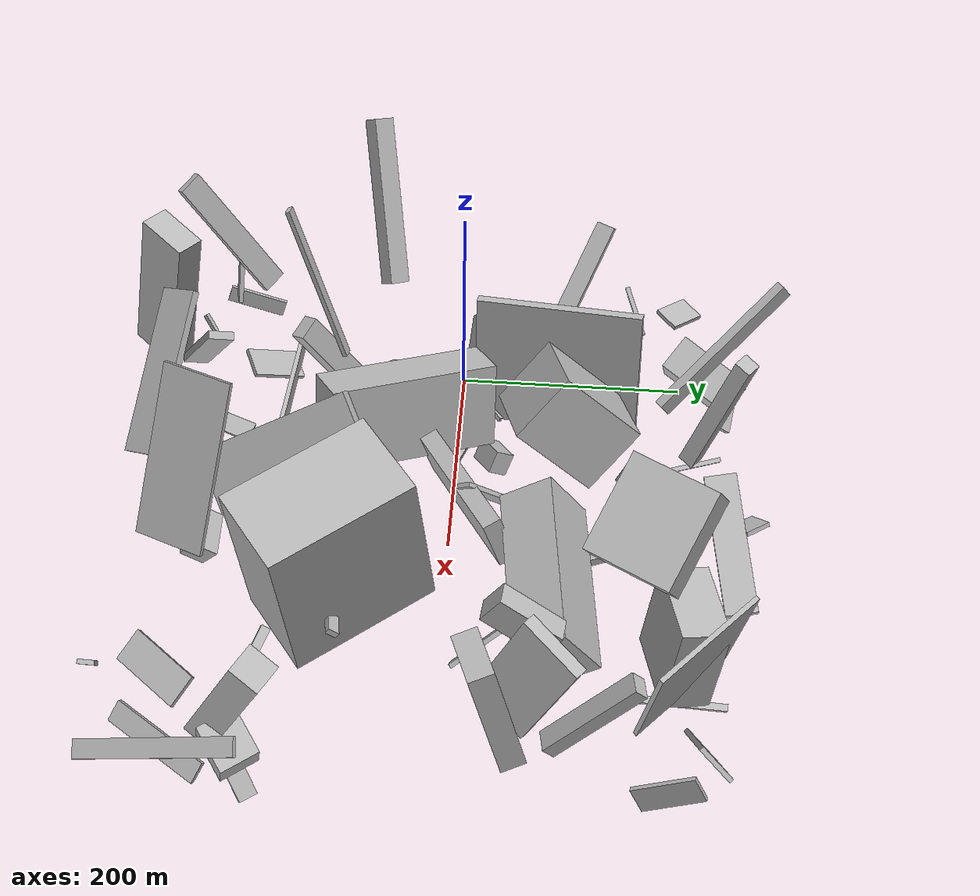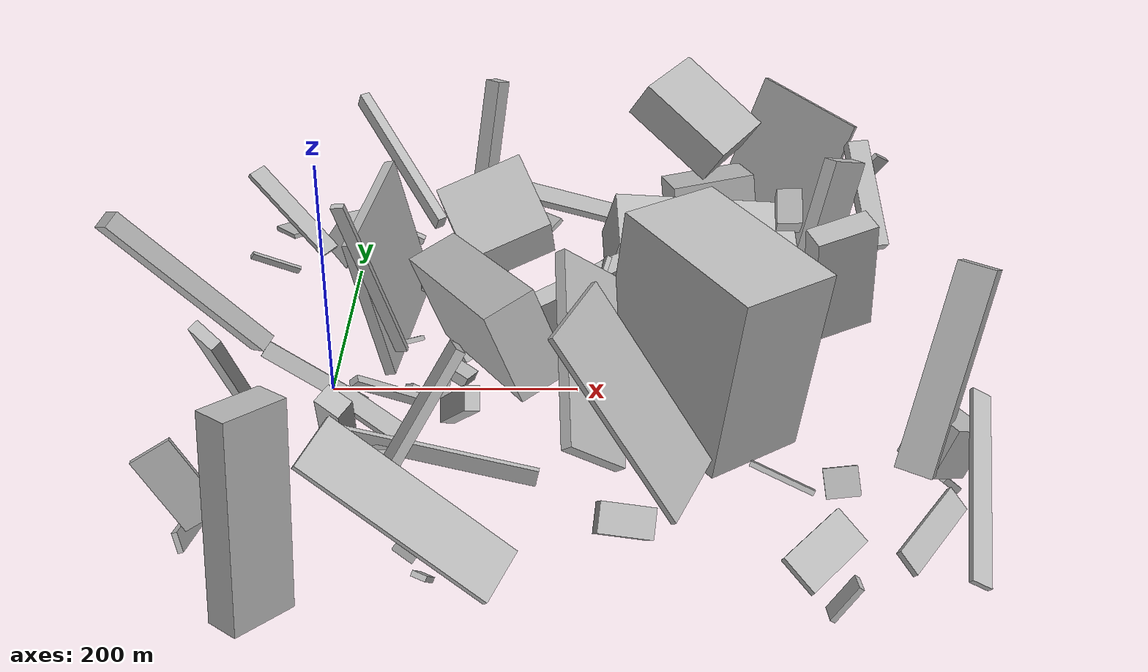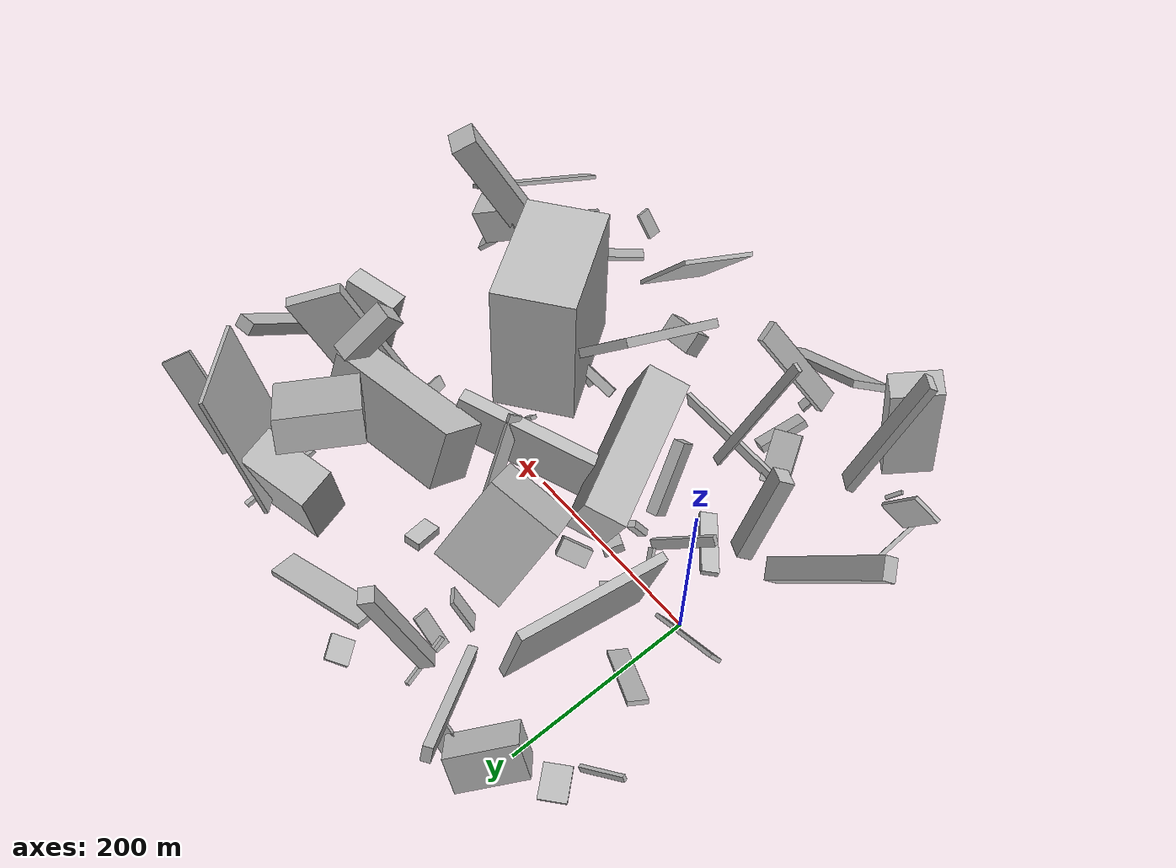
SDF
<sdf version="1.6">
 <world name="default">
  <scene>
   <sky><clouds><speed>12</speed></clouds></sky>
   <ambient>0.4 0.4 0.4 1</ambient>
   <background>0.7 0.7 0.7 1</background>
   <shadows>1</shadows>
  </scene>
  <gravity>0 0 -9.8066</gravity>
  <magnetic_field>6e-06 2.3e-05 -4.2e-05</magnetic_field>
  <physics default="0" name="default_physics" type="ode">
   <ode>
    <solver>
     <type>quick</type>
     <iters>10</iters>
     <sor>1.0</sor>
     <use_dynamic_moi_rescaling>0</use_dynamic_moi_rescaling>
    </solver>
    <constraints>
     <cfm>0</cfm>
     <erp>0.2</erp>
     <contact_max_correcting_vel>100</contact_max_correcting_vel>
     <contact_surface_layer>0.001</contact_surface_layer>
    </constraints>
   </ode>
   <max_step_size>0.004</max_step_size>
   <real_time_factor>1</real_time_factor>
   <real_time_update_rate>250</real_time_update_rate>
  </physics>
  <light name="sun" type="directional">
   <pose>0 0 10 0 0 0</pose>
   <diffuse>0.8 0.8 0.8 1</diffuse>
   <specular>0.2 0.2 0.2 1</specular>
   <attenuation>
    <range>1000</range>
    <constant>0.9</constant>
    <linear>0.01</linear>
    <quadratic>0.001</quadratic>
   </attenuation>
   <direction>-0.5 0.1 -0.9</direction>
  </light>
  <model name="building_1">
   <static>0</static>
   <pose>-31.63262482808633 -238.3386272602602 14.952710230548476 0.8005664860490997 -0.28923439661563144 -0.4902161368618541</pose>
   <link name="link">
    <gravity>0</gravity>
    <pose>0 0 9.0 0 0 0</pose>
    <collision name="collision"><geometry><box><size>4 4 18</size></box></geometry></collision>
    <visual name="visual">
     <cast_shadows>0</cast_shadows>
     <geometry><box><size>4 4 18</size></box></geometry>
     <material>
      <script>
       <uri>model://HANNAS_wall/materials/scripts</uri>
       <uri>model://HANNAS_wall/materials/textures</uri>
       <name>vrc/HANNAS_wall</name>
      </script>
     </material>
    </visual>
   </link>
  </model>
  <model name="building_2">
   <static>0</static>
   <pose>207.26938177321438 -200.3059662888481 75.61046271734673 0.815676334917113 -0.6653864039753742 -2.582316708718397</pose>
   <link name="link">
    <gravity>0</gravity>
    <pose>0 0 75.0 0 0 0</pose>
    <collision name="collision"><geometry><box><size>57 9 150</size></box></geometry></collision>
    <visual name="visual">
     <cast_shadows>0</cast_shadows>
     <geometry><box><size>57 9 150</size></box></geometry>
     <material>
      <script>
       <uri>model://HANNAS_wall/materials/scripts</uri>
       <uri>model://HANNAS_wall/materials/textures</uri>
       <name>vrc/HANNAS_wall</name>
      </script>
     </material>
    </visual>
   </link>
  </model>
  <model name="building_3">
   <static>0</static>
   <pose>40.910126400132576 241.63226380116038 22.038314708658156 2.5645582753945058 -0.7170101781710025 -1.3286254477067514</pose>
   <link name="link">
    <gravity>0</gravity>
    <pose>0 0 2.0 0 0 0</pose>
    <collision name="collision"><geometry><box><size>21 36 4</size></box></geometry></collision>
    <visual name="visual">
     <cast_shadows>0</cast_shadows>
     <geometry><box><size>21 36 4</size></box></geometry>
     <material>
      <script>
       <uri>model://HANNAS_wall/materials/scripts</uri>
       <uri>model://HANNAS_wall/materials/textures</uri>
       <name>vrc/HANNAS_wall</name>
      </script>
     </material>
    </visual>
   </link>
  </model>
  <model name="building_4">
   <static>0</static>
   <pose>145.83034900432736 78.59534806970112 82.56105502202897 0.45540337470626746 -0.7359162643937962 -1.6263342601523199</pose>
   <link name="link">
    <gravity>0</gravity>
    <pose>0 0 32.5 0 0 0</pose>
    <collision name="collision"><geometry><box><size>86 74 65</size></box></geometry></collision>
    <visual name="visual">
     <cast_shadows>0</cast_shadows>
     <geometry><box><size>86 74 65</size></box></geometry>
     <material>
      <script>
       <uri>model://HANNAS_wall/materials/scripts</uri>
       <uri>model://HANNAS_wall/materials/textures</uri>
       <name>vrc/HANNAS_wall</name>
      </script>
     </material>
    </visual>
   </link>
  </model>
  <model name="building_5">
   <static>0</static>
   <pose>385.5985176988212 207.1859443502275 95.5600087022986 0.5871090403565852 -1.240195219610773 0.2166317580293296</pose>
   <link name="link">
    <gravity>0</gravity>
    <pose>0 0 2.0 0 0 0</pose>
    <collision name="collision"><geometry><box><size>150 101 4</size></box></geometry></collision>
    <visual name="visual">
     <cast_shadows>0</cast_shadows>
     <geometry><box><size>150 101 4</size></box></geometry>
     <material>
      <script>
       <uri>model://HANNAS_wall/materials/scripts</uri>
       <uri>model://HANNAS_wall/materials/textures</uri>
       <name>vrc/HANNAS_wall</name>
      </script>
     </material>
    </visual>
   </link>
  </model>
  <model name="building_6">
   <static>0</static>
   <pose>328.5568676908342 -64.25157886907321 109.61574034972932 1.3806020329422009 -1.4433274648323513 -0.7580132744841058</pose>
   <link name="link">
    <gravity>0</gravity>
    <pose>0 0 41.0 0 0 0</pose>
    <collision name="collision"><geometry><box><size>150 132 82</size></box></geometry></collision>
    <visual name="visual">
     <cast_shadows>0</cast_shadows>
     <geometry><box><size>150 132 82</size></box></geometry>
     <material>
      <script>
       <uri>model://HANNAS_wall/materials/scripts</uri>
       <uri>model://HANNAS_wall/materials/textures</uri>
       <name>vrc/HANNAS_wall</name>
      </script>
     </material>
    </visual>
   </link>
  </model>
  <model name="building_7">
   <static>0</static>
   <pose>168.74288685980832 -161.76539789103853 31.724587846478205 1.3841098848227769 0.031790680781820985 -1.6798402488281088</pose>
   <link name="link">
    <gravity>0</gravity>
    <pose>0 0 75.0 0 0 0</pose>
    <collision name="collision"><geometry><box><size>4 14 150</size></box></geometry></collision>
    <visual name="visual">
     <cast_shadows>0</cast_shadows>
     <geometry><box><size>4 14 150</size></box></geometry>
     <material>
      <script>
       <uri>model://HANNAS_wall/materials/scripts</uri>
       <uri>model://HANNAS_wall/materials/textures</uri>
       <name>vrc/HANNAS_wall</name>
      </script>
     </material>
    </visual>
   </link>
  </model>
  <model name="building_8">
   <static>0</static>
   <pose>271.4414879832556 -227.74499686253947 70.03522222170182 0.5797188081933818 0.10490805319413471 -2.0147848377842594</pose>
   <link name="link">
    <gravity>0</gravity>
    <pose>0 0 75.0 0 0 0</pose>
    <collision name="collision"><geometry><box><size>66 4 150</size></box></geometry></collision>
    <visual name="visual">
     <cast_shadows>0</cast_shadows>
     <geometry><box><size>66 4 150</size></box></geometry>
     <material>
      <script>
       <uri>model://HANNAS_wall/materials/scripts</uri>
       <uri>model://HANNAS_wall/materials/textures</uri>
       <name>vrc/HANNAS_wall</name>
      </script>
     </material>
    </visual>
   </link>
  </model>
  <model name="building_9">
   <static>0</static>
   <pose>78.7811429225911 -208.3163353965587 21.626139839603216 2.664819100229129 -0.9861743879555035 0.18986695504711046</pose>
   <link name="link">
    <gravity>0</gravity>
    <pose>0 0 8.5 0 0 0</pose>
    <collision name="collision"><geometry><box><size>8 51 17</size></box></geometry></collision>
    <visual name="visual">
     <cast_shadows>0</cast_shadows>
     <geometry><box><size>8 51 17</size></box></geometry>
     <material>
      <script>
       <uri>model://HANNAS_wall/materials/scripts</uri>
       <uri>model://HANNAS_wall/materials/textures</uri>
       <name>vrc/HANNAS_wall</name>
      </script>
     </material>
    </visual>
   </link>
  </model>
  <model name="building_10">
   <static>0</static>
   <pose>103.19475631070065 -82.80776794763369 40.717136810998156 1.8759955568172706 -0.8414104792147473 1.581585310863429</pose>
   <link name="link">
    <gravity>0</gravity>
    <pose>0 0 6.0 0 0 0</pose>
    <collision name="collision"><geometry><box><size>19 75 12</size></box></geometry></collision>
    <visual name="visual">
     <cast_shadows>0</cast_shadows>
     <geometry><box><size>19 75 12</size></box></geometry>
     <material>
      <script>
       <uri>model://HANNAS_wall/materials/scripts</uri>
       <uri>model://HANNAS_wall/materials/textures</uri>
       <name>vrc/HANNAS_wall</name>
      </script>
     </material>
    </visual>
   </link>
  </model>
  <model name="building_11">
   <static>0</static>
   <pose>3.707602819996172 -254.71567695871988 84.33535356745548 1.4366036993155373 -0.07168055516388391 -0.686089249959606</pose>
   <link name="link">
    <gravity>0</gravity>
    <pose>0 0 24.5 0 0 0</pose>
    <collision name="collision"><geometry><box><size>26 150 49</size></box></geometry></collision>
    <visual name="visual">
     <cast_shadows>0</cast_shadows>
     <geometry><box><size>26 150 49</size></box></geometry>
     <material>
      <script>
       <uri>model://HANNAS_wall/materials/scripts</uri>
       <uri>model://HANNAS_wall/materials/textures</uri>
       <name>vrc/HANNAS_wall</name>
      </script>
     </material>
    </visual>
   </link>
  </model>
  <model name="building_12">
   <static>0</static>
   <pose>111.58322905060083 -51.228424377751445 89.46797916015956 0.4525576862512917 -1.2060587855435325 -3.112531434802875</pose>
   <link name="link">
    <gravity>0</gravity>
    <pose>0 0 21.0 0 0 0</pose>
    <collision name="collision"><geometry><box><size>75 150 42</size></box></geometry></collision>
    <visual name="visual">
     <cast_shadows>0</cast_shadows>
     <geometry><box><size>75 150 42</size></box></geometry>
     <material>
      <script>
       <uri>model://HANNAS_wall/materials/scripts</uri>
       <uri>model://HANNAS_wall/materials/textures</uri>
       <name>vrc/HANNAS_wall</name>
      </script>
     </material>
    </visual>
   </link>
  </model>
  <model name="building_13">
   <static>0</static>
   <pose>296.8892378148111 105.22710633295979 64.38485602552785 -0.5504748483489682 -0.11295621952823064 -3.0195406033292036</pose>
   <link name="link">
    <gravity>0</gravity>
    <pose>0 0 30.0 0 0 0</pose>
    <collision name="collision"><geometry><box><size>150 48 60</size></box></geometry></collision>
    <visual name="visual">
     <cast_shadows>0</cast_shadows>
     <geometry><box><size>150 48 60</size></box></geometry>
     <material>
      <script>
       <uri>model://HANNAS_wall/materials/scripts</uri>
       <uri>model://HANNAS_wall/materials/textures</uri>
       <name>vrc/HANNAS_wall</name>
      </script>
     </material>
    </visual>
   </link>
  </model>
  <model name="building_14">
   <static>0</static>
   <pose>334.0575379939724 151.8308646514345 145.6474050809621 0.031514701729356234 -0.9894755961442163 -0.5585022445859315</pose>
   <link name="link">
    <gravity>0</gravity>
    <pose>0 0 43.0 0 0 0</pose>
    <collision name="collision"><geometry><box><size>32 78 86</size></box></geometry></collision>
    <visual name="visual">
     <cast_shadows>0</cast_shadows>
     <geometry><box><size>32 78 86</size></box></geometry>
     <material>
      <script>
       <uri>model://HANNAS_wall/materials/scripts</uri>
       <uri>model://HANNAS_wall/materials/textures</uri>
       <name>vrc/HANNAS_wall</name>
      </script>
     </material>
    </visual>
   </link>
  </model>
  <model name="building_15">
   <static>0</static>
   <pose>447.1119301437057 -157.62371407962922 120.34093050304995 -2.997721982921637 -1.1307911266754382 0.9438869910297829</pose>
   <link name="link">
    <gravity>0</gravity>
    <pose>0 0 13.5 0 0 0</pose>
    <collision name="collision"><geometry><box><size>150 27 27</size></box></geometry></collision>
    <visual name="visual">
     <cast_shadows>0</cast_shadows>
     <geometry><box><size>150 27 27</size></box></geometry>
     <material>
      <script>
       <uri>model://HANNAS_wall/materials/scripts</uri>
       <uri>model://HANNAS_wall/materials/textures</uri>
       <name>vrc/HANNAS_wall</name>
      </script>
     </material>
    </visual>
   </link>
  </model>
  <model name="building_16">
   <static>0</static>
   <pose>36.790015822987584 87.37198506409416 67.32568811977403 -0.1861068664671638 -1.3439077419853442 -3.0907287627377342</pose>
   <link name="link">
    <gravity>0</gravity>
    <pose>0 0 4.5 0 0 0</pose>
    <collision name="collision"><geometry><box><size>124 148 9</size></box></geometry></collision>
    <visual name="visual">
     <cast_shadows>0</cast_shadows>
     <geometry><box><size>124 148 9</size></box></geometry>
     <material>
      <script>
       <uri>model://HANNAS_wall/materials/scripts</uri>
       <uri>model://HANNAS_wall/materials/textures</uri>
       <name>vrc/HANNAS_wall</name>
      </script>
     </material>
    </visual>
   </link>
  </model>
  <model name="building_17">
   <static>0</static>
   <pose>-54.7675170381275 10.177811606496748 32.25680490631322 2.210653096318451 0.4589223684380733 1.789629079156058</pose>
   <link name="link">
    <gravity>0</gravity>
    <pose>0 0 46.5 0 0 0</pose>
    <collision name="collision"><geometry><box><size>4 14 93</size></box></geometry></collision>
    <visual name="visual">
     <cast_shadows>0</cast_shadows>
     <geometry><box><size>4 14 93</size></box></geometry>
     <material>
      <script>
       <uri>model://HANNAS_wall/materials/scripts</uri>
       <uri>model://HANNAS_wall/materials/textures</uri>
       <name>vrc/HANNAS_wall</name>
      </script>
     </material>
    </visual>
   </link>
  </model>
  <model name="building_18">
   <static>0</static>
   <pose>386.7410558918561 -157.63088283418452 24.950485610600957 2.1286963244977777 0.17645748736868275 3.078770578340832</pose>
   <link name="link">
    <gravity>0</gravity>
    <pose>0 0 2.0 0 0 0</pose>
    <collision name="collision"><geometry><box><size>25 22 4</size></box></geometry></collision>
    <visual name="visual">
     <cast_shadows>0</cast_shadows>
     <geometry><box><size>25 22 4</size></box></geometry>
     <material>
      <script>
       <uri>model://HANNAS_wall/materials/scripts</uri>
       <uri>model://HANNAS_wall/materials/textures</uri>
       <name>vrc/HANNAS_wall</name>
      </script>
     </material>
    </visual>
   </link>
  </model>
  <model name="building_19">
   <static>0</static>
   <pose>214.55406460863279 148.3109331731112 29.821218317691194 2.7889765361667407 -1.3260055984704013 -1.0130349333234336</pose>
   <link name="link">
    <gravity>0</gravity>
    <pose>0 0 14.5 0 0 0</pose>
    <collision name="collision"><geometry><box><size>9 18 29</size></box></geometry></collision>
    <visual name="visual">
     <cast_shadows>0</cast_shadows>
     <geometry><box><size>9 18 29</size></box></geometry>
     <material>
      <script>
       <uri>model://HANNAS_wall/materials/scripts</uri>
       <uri>model://HANNAS_wall/materials/textures</uri>
       <name>vrc/HANNAS_wall</name>
      </script>
     </material>
    </visual>
   </link>
  </model>
  <model name="building_20">
   <static>0</static>
   <pose>70.11279502874851 -99.70316993642578 99.81867580484493 0.35890349538487043 -0.14686746521378075 -0.20950563963154584</pose>
   <link name="link">
    <gravity>0</gravity>
    <pose>0 0 75.0 0 0 0</pose>
    <collision name="collision"><geometry><box><size>9 4 150</size></box></geometry></collision>
    <visual name="visual">
     <cast_shadows>0</cast_shadows>
     <geometry><box><size>9 4 150</size></box></geometry>
     <material>
      <script>
       <uri>model://HANNAS_wall/materials/scripts</uri>
       <uri>model://HANNAS_wall/materials/textures</uri>
       <name>vrc/HANNAS_wall</name>
      </script>
     </material>
    </visual>
   </link>
  </model>
  <model name="building_21">
   <static>0</static>
   <pose>372.15495091140247 63.23446389049094 116.49113469673618 0.593904735522653 0.0807858278491065 3.044906961496317</pose>
   <link name="link">
    <gravity>0</gravity>
    <pose>0 0 14.0 0 0 0</pose>
    <collision name="collision"><geometry><box><size>20 60 28</size></box></geometry></collision>
    <visual name="visual">
     <cast_shadows>0</cast_shadows>
     <geometry><box><size>20 60 28</size></box></geometry>
     <material>
      <script>
       <uri>model://HANNAS_wall/materials/scripts</uri>
       <uri>model://HANNAS_wall/materials/textures</uri>
       <name>vrc/HANNAS_wall</name>
      </script>
     </material>
    </visual>
   </link>
  </model>
  <model name="building_22">
   <static>0</static>
   <pose>44.25836844624524 -62.93609607315601 23.987442747975194 -1.7738563606181412 -0.10648423062132967 2.4134798028234417</pose>
   <link name="link">
    <gravity>0</gravity>
    <pose>0 0 8.5 0 0 0</pose>
    <collision name="collision"><geometry><box><size>68 6 17</size></box></geometry></collision>
    <visual name="visual">
     <cast_shadows>0</cast_shadows>
     <geometry><box><size>68 6 17</size></box></geometry>
     <material>
      <script>
       <uri>model://HANNAS_wall/materials/scripts</uri>
       <uri>model://HANNAS_wall/materials/textures</uri>
       <name>vrc/HANNAS_wall</name>
      </script>
     </material>
    </visual>
   </link>
  </model>
  <model name="building_23">
   <static>0</static>
   <pose>206.469996675635 22.178218810083976 57.71057927088748 0.22996234108164523 0.2557657491938371 -1.0401215710926859</pose>
   <link name="link">
    <gravity>0</gravity>
    <pose>0 0 22.5 0 0 0</pose>
    <collision name="collision"><geometry><box><size>16 150 45</size></box></geometry></collision>
    <visual name="visual">
     <cast_shadows>0</cast_shadows>
     <geometry><box><size>16 150 45</size></box></geometry>
     <material>
      <script>
       <uri>model://HANNAS_wall/materials/scripts</uri>
       <uri>model://HANNAS_wall/materials/textures</uri>
       <name>vrc/HANNAS_wall</name>
      </script>
     </material>
    </visual>
   </link>
  </model>
  <model name="building_24">
   <static>0</static>
   <pose>227.36019364979688 -201.2066834820896 24.065607586374274 0.24890991032715556 -0.858630412134051 1.3844437424211136</pose>
   <link name="link">
    <gravity>0</gravity>
    <pose>0 0 12.0 0 0 0</pose>
    <collision name="collision"><geometry><box><size>22 39 24</size></box></geometry></collision>
    <visual name="visual">
     <cast_shadows>0</cast_shadows>
     <geometry><box><size>22 39 24</size></box></geometry>
     <material>
      <script>
       <uri>model://HANNAS_wall/materials/scripts</uri>
       <uri>model://HANNAS_wall/materials/textures</uri>
       <name>vrc/HANNAS_wall</name>
      </script>
     </material>
    </visual>
   </link>
  </model>
  <model name="building_25">
   <static>0</static>
   <pose>-38.35415109437049 -66.51399121617297 84.97807688453248 -0.4470195317411588 -0.5670130710587036 0.9523551634516007</pose>
   <link name="link">
    <gravity>0</gravity>
    <pose>0 0 75.0 0 0 0</pose>
    <collision name="collision"><geometry><box><size>14 21 150</size></box></geometry></collision>
    <visual name="visual">
     <cast_shadows>0</cast_shadows>
     <geometry><box><size>14 21 150</size></box></geometry>
     <material>
      <script>
       <uri>model://HANNAS_wall/materials/scripts</uri>
       <uri>model://HANNAS_wall/materials/textures</uri>
       <name>vrc/HANNAS_wall</name>
      </script>
     </material>
    </visual>
   </link>
  </model>
  <model name="building_26">
   <static>0</static>
   <pose>345.6971526354265 -147.20522278236012 21.67724479584788 0.5244536068509292 -0.9705407334452265 0.765926872569489</pose>
   <link name="link">
    <gravity>0</gravity>
    <pose>0 0 4.0 0 0 0</pose>
    <collision name="collision"><geometry><box><size>4 50 8</size></box></geometry></collision>
    <visual name="visual">
     <cast_shadows>0</cast_shadows>
     <geometry><box><size>4 50 8</size></box></geometry>
     <material>
      <script>
       <uri>model://HANNAS_wall/materials/scripts</uri>
       <uri>model://HANNAS_wall/materials/textures</uri>
       <name>vrc/HANNAS_wall</name>
      </script>
     </material>
    </visual>
   </link>
  </model>
  <model name="building_27">
   <static>0</static>
   <pose>459.89964747947636 -137.5837877564378 18.85065919612518 1.7413379638520765 -0.7936654155923364 0.45979361274114733</pose>
   <link name="link">
    <gravity>0</gravity>
    <pose>0 0 8.0 0 0 0</pose>
    <collision name="collision"><geometry><box><size>5 29 16</size></box></geometry></collision>
    <visual name="visual">
     <cast_shadows>0</cast_shadows>
     <geometry><box><size>5 29 16</size></box></geometry>
     <material>
      <script>
       <uri>model://HANNAS_wall/materials/scripts</uri>
       <uri>model://HANNAS_wall/materials/textures</uri>
       <name>vrc/HANNAS_wall</name>
      </script>
     </material>
    </visual>
   </link>
  </model>
  <model name="building_28">
   <static>0</static>
   <pose>446.57895442483306 -138.32543965604998 59.16451402860619 1.8542108035397444 -1.1485446165379285 0.33858834118500064</pose>
   <link name="link">
    <gravity>0</gravity>
    <pose>0 0 17.0 0 0 0</pose>
    <collision name="collision"><geometry><box><size>40 40 34</size></box></geometry></collision>
    <visual name="visual">
     <cast_shadows>0</cast_shadows>
     <geometry><box><size>40 40 34</size></box></geometry>
     <material>
      <script>
       <uri>model://HANNAS_wall/materials/scripts</uri>
       <uri>model://HANNAS_wall/materials/textures</uri>
       <name>vrc/HANNAS_wall</name>
      </script>
     </material>
    </visual>
   </link>
  </model>
  <model name="building_29">
   <static>0</static>
   <pose>288.09892623258526 192.95826353811242 51.77600429094442 1.4919266476878474 0.14903873308956647 1.7973783729843018</pose>
   <link name="link">
    <gravity>0</gravity>
    <pose>0 0 37.5 0 0 0</pose>
    <collision name="collision"><geometry><box><size>41 85 75</size></box></geometry></collision>
    <visual name="visual">
     <cast_shadows>0</cast_shadows>
     <geometry><box><size>41 85 75</size></box></geometry>
     <material>
      <script>
       <uri>model://HANNAS_wall/materials/scripts</uri>
       <uri>model://HANNAS_wall/materials/textures</uri>
       <name>vrc/HANNAS_wall</name>
      </script>
     </material>
    </visual>
   </link>
  </model>
  <model name="building_30">
   <static>0</static>
   <pose>55.42869857392012 -49.81172479323951 33.41160223037666 2.5412470494276875 -0.5886506450665928 -2.577295902689637</pose>
   <link name="link">
    <gravity>0</gravity>
    <pose>0 0 5.0 0 0 0</pose>
    <collision name="collision"><geometry><box><size>70 6 10</size></box></geometry></collision>
    <visual name="visual">
     <cast_shadows>0</cast_shadows>
     <geometry><box><size>70 6 10</size></box></geometry>
     <material>
      <script>
       <uri>model://HANNAS_wall/materials/scripts</uri>
       <uri>model://HANNAS_wall/materials/textures</uri>
       <name>vrc/HANNAS_wall</name>
      </script>
     </material>
    </visual>
   </link>
  </model>
  <model name="building_31">
   <static>0</static>
   <pose>98.8957898191832 -257.66802587354624 19.881640438798275 1.3899887033603275 -0.7323413839826504 -1.8690540790380838</pose>
   <link name="link">
    <gravity>0</gravity>
    <pose>0 0 5.5 0 0 0</pose>
    <collision name="collision"><geometry><box><size>17 4 11</size></box></geometry></collision>
    <visual name="visual">
     <cast_shadows>0</cast_shadows>
     <geometry><box><size>17 4 11</size></box></geometry>
     <material>
      <script>
       <uri>model://HANNAS_wall/materials/scripts</uri>
       <uri>model://HANNAS_wall/materials/textures</uri>
       <name>vrc/HANNAS_wall</name>
      </script>
     </material>
    </visual>
   </link>
  </model>
  <model name="building_32">
   <static>0</static>
   <pose>405.5514421885111 73.21545619631826 91.82560332795254 -1.498128169201765 -1.2014630809605351 0.8251222875799195</pose>
   <link name="link">
    <gravity>0</gravity>
    <pose>0 0 5.5 0 0 0</pose>
    <collision name="collision"><geometry><box><size>150 57 11</size></box></geometry></collision>
    <visual name="visual">
     <cast_shadows>0</cast_shadows>
     <geometry><box><size>150 57 11</size></box></geometry>
     <material>
      <script>
       <uri>model://HANNAS_wall/materials/scripts</uri>
       <uri>model://HANNAS_wall/materials/textures</uri>
       <name>vrc/HANNAS_wall</name>
      </script>
     </material>
    </visual>
   </link>
  </model>
  <model name="building_33">
   <static>0</static>
   <pose>418.4480212632314 38.07565041686333 76.71241907075716 1.3566973268784757 0.17321307504773434 -2.8204602926095124</pose>
   <link name="link">
    <gravity>0</gravity>
    <pose>0 0 11.0 0 0 0</pose>
    <collision name="collision"><geometry><box><size>53 108 22</size></box></geometry></collision>
    <visual name="visual">
     <cast_shadows>0</cast_shadows>
     <geometry><box><size>53 108 22</size></box></geometry>
     <material>
      <script>
       <uri>model://HANNAS_wall/materials/scripts</uri>
       <uri>model://HANNAS_wall/materials/textures</uri>
       <name>vrc/HANNAS_wall</name>
      </script>
     </material>
    </visual>
   </link>
  </model>
  <model name="building_34">
   <static>0</static>
   <pose>447.93167072097276 123.12132506150805 120.07388129675083 3.1006188690933985 -0.7806063518769423 1.760096885923154</pose>
   <link name="link">
    <gravity>0</gravity>
    <pose>0 0 6.5 0 0 0</pose>
    <collision name="collision"><geometry><box><size>95 18 13</size></box></geometry></collision>
    <visual name="visual">
     <cast_shadows>0</cast_shadows>
     <geometry><box><size>95 18 13</size></box></geometry>
     <material>
      <script>
       <uri>model://HANNAS_wall/materials/scripts</uri>
       <uri>model://HANNAS_wall/materials/textures</uri>
       <name>vrc/HANNAS_wall</name>
      </script>
     </material>
    </visual>
   </link>
  </model>
  <model name="building_35">
   <static>0</static>
   <pose>85.68555611475091 -261.4549054352168 79.42212450024715 -0.5407560120227238 -0.6320178786758542 2.9380670799440964</pose>
   <link name="link">
    <gravity>0</gravity>
    <pose>0 0 3.5 0 0 0</pose>
    <collision name="collision"><geometry><box><size>150 40 7</size></box></geometry></collision>
    <visual name="visual">
     <cast_shadows>0</cast_shadows>
     <geometry><box><size>150 40 7</size></box></geometry>
     <material>
      <script>
       <uri>model://HANNAS_wall/materials/scripts</uri>
       <uri>model://HANNAS_wall/materials/textures</uri>
       <name>vrc/HANNAS_wall</name>
      </script>
     </material>
    </visual>
   </link>
  </model>
  <model name="building_36">
   <static>0</static>
   <pose>67.56072011728284 -20.465686306703862 17.286528294600114 -2.5051765878683385 -0.6193908691643136 -2.8933314370068413</pose>
   <link name="link">
    <gravity>0</gravity>
    <pose>0 0 2.0 0 0 0</pose>
    <collision name="collision"><geometry><box><size>6 13 4</size></box></geometry></collision>
    <visual name="visual">
     <cast_shadows>0</cast_shadows>
     <geometry><box><size>6 13 4</size></box></geometry>
     <material>
      <script>
       <uri>model://HANNAS_wall/materials/scripts</uri>
       <uri>model://HANNAS_wall/materials/textures</uri>
       <name>vrc/HANNAS_wall</name>
      </script>
     </material>
    </visual>
   </link>
  </model>
  <model name="building_37">
   <static>0</static>
   <pose>78.05602648286886 181.37582634301208 60.671430038592945 0.12743059308078555 -1.002415157632279 -1.0679030571223849</pose>
   <link name="link">
    <gravity>0</gravity>
    <pose>0 0 75.0 0 0 0</pose>
    <collision name="collision"><geometry><box><size>15 9 150</size></box></geometry></collision>
    <visual name="visual">
     <cast_shadows>0</cast_shadows>
     <geometry><box><size>15 9 150</size></box></geometry>
     <material>
      <script>
       <uri>model://HANNAS_wall/materials/scripts</uri>
       <uri>model://HANNAS_wall/materials/textures</uri>
       <name>vrc/HANNAS_wall</name>
      </script>
     </material>
    </visual>
   </link>
  </model>
  <model name="building_38">
   <static>0</static>
   <pose>71.24128688809145 38.247756416237635 25.818974630451038 1.34694629213293 -0.48082045305755894 -0.6919423512314183</pose>
   <link name="link">
    <gravity>0</gravity>
    <pose>0 0 11.0 0 0 0</pose>
    <collision name="collision"><geometry><box><size>4 4 22</size></box></geometry></collision>
    <visual name="visual">
     <cast_shadows>0</cast_shadows>
     <geometry><box><size>4 4 22</size></box></geometry>
     <material>
      <script>
       <uri>model://HANNAS_wall/materials/scripts</uri>
       <uri>model://HANNAS_wall/materials/textures</uri>
       <name>vrc/HANNAS_wall</name>
      </script>
     </material>
    </visual>
   </link>
  </model>
  <model name="building_39">
   <static>0</static>
   <pose>345.8013072772884 13.241938204889514 26.05047936903272 -0.8315523887729727 -0.7296735428965955 -0.08491361176719728</pose>
   <link name="link">
    <gravity>0</gravity>
    <pose>0 0 31.5 0 0 0</pose>
    <collision name="collision"><geometry><box><size>13 4 63</size></box></geometry></collision>
    <visual name="visual">
     <cast_shadows>0</cast_shadows>
     <geometry><box><size>13 4 63</size></box></geometry>
     <material>
      <script>
       <uri>model://HANNAS_wall/materials/scripts</uri>
       <uri>model://HANNAS_wall/materials/textures</uri>
       <name>vrc/HANNAS_wall</name>
      </script>
     </material>
    </visual>
   </link>
  </model>
  <model name="building_40">
   <static>0</static>
   <pose>100.87122885187883 26.90541595619583 18.248123997081702 -1.214608021970523 -0.5576165297579391 -1.2146754526046397</pose>
   <link name="link">
    <gravity>0</gravity>
    <pose>0 0 15.0 0 0 0</pose>
    <collision name="collision"><geometry><box><size>18 20 30</size></box></geometry></collision>
    <visual name="visual">
     <cast_shadows>0</cast_shadows>
     <geometry><box><size>18 20 30</size></box></geometry>
     <material>
      <script>
       <uri>model://HANNAS_wall/materials/scripts</uri>
       <uri>model://HANNAS_wall/materials/textures</uri>
       <name>vrc/HANNAS_wall</name>
      </script>
     </material>
    </visual>
   </link>
  </model>
  <model name="building_41">
   <static>0</static>
   <pose>465.8036855522599 196.09221301354296 27.775032490268906 0.18215731847055808 0.4905083830564741 -1.6372012395092599</pose>
   <link name="link">
    <gravity>0</gravity>
    <pose>0 0 12.0 0 0 0</pose>
    <collision name="collision"><geometry><box><size>55 4 24</size></box></geometry></collision>
    <visual name="visual">
     <cast_shadows>0</cast_shadows>
     <geometry><box><size>55 4 24</size></box></geometry>
     <material>
      <script>
       <uri>model://HANNAS_wall/materials/scripts</uri>
       <uri>model://HANNAS_wall/materials/textures</uri>
       <name>vrc/HANNAS_wall</name>
      </script>
     </material>
    </visual>
   </link>
  </model>
  <model name="building_42">
   <static>0</static>
   <pose>131.8268778664522 187.14795565127716 25.046007971168983 2.215221007019954 0.06744253810318897 1.6146235523408823</pose>
   <link name="link">
    <gravity>0</gravity>
    <pose>0 0 2.0 0 0 0</pose>
    <collision name="collision"><geometry><box><size>15 42 4</size></box></geometry></collision>
    <visual name="visual">
     <cast_shadows>0</cast_shadows>
     <geometry><box><size>15 42 4</size></box></geometry>
     <material>
      <script>
       <uri>model://HANNAS_wall/materials/scripts</uri>
       <uri>model://HANNAS_wall/materials/textures</uri>
       <name>vrc/HANNAS_wall</name>
      </script>
     </material>
    </visual>
   </link>
  </model>
  <model name="building_43">
   <static>0</static>
   <pose>26.35052257434742 -113.44591782206082 48.19948334423583 2.01634500277912 0.3587203361815976 -0.5137257329006749</pose>
   <link name="link">
    <gravity>0</gravity>
    <pose>0 0 8.0 0 0 0</pose>
    <collision name="collision"><geometry><box><size>22 93 16</size></box></geometry></collision>
    <visual name="visual">
     <cast_shadows>0</cast_shadows>
     <geometry><box><size>22 93 16</size></box></geometry>
     <material>
      <script>
       <uri>model://HANNAS_wall/materials/scripts</uri>
       <uri>model://HANNAS_wall/materials/textures</uri>
       <name>vrc/HANNAS_wall</name>
      </script>
     </material>
    </visual>
   </link>
  </model>
  <model name="building_44">
   <static>0</static>
   <pose>-55.585455816093386 -216.82759026071403 37.52125108152074 -0.14710563775239766 -0.49816378195526245 0.2266449735780446</pose>
   <link name="link">
    <gravity>0</gravity>
    <pose>0 0 31.5 0 0 0</pose>
    <collision name="collision"><geometry><box><size>31 4 63</size></box></geometry></collision>
    <visual name="visual">
     <cast_shadows>0</cast_shadows>
     <geometry><box><size>31 4 63</size></box></geometry>
     <material>
      <script>
       <uri>model://HANNAS_wall/materials/scripts</uri>
       <uri>model://HANNAS_wall/materials/textures</uri>
       <name>vrc/HANNAS_wall</name>
      </script>
     </material>
    </visual>
   </link>
  </model>
  <model name="building_45">
   <static>0</static>
   <pose>465.9551867733224 -208.25102885499547 60.48478255740571 0.5861717701137408 -0.39502543829572684 1.3840556089380374</pose>
   <link name="link">
    <gravity>0</gravity>
    <pose>0 0 2.0 0 0 0</pose>
    <collision name="collision"><geometry><box><size>150 16 4</size></box></geometry></collision>
    <visual name="visual">
     <cast_shadows>0</cast_shadows>
     <geometry><box><size>150 16 4</size></box></geometry>
     <material>
      <script>
       <uri>model://HANNAS_wall/materials/scripts</uri>
       <uri>model://HANNAS_wall/materials/textures</uri>
       <name>vrc/HANNAS_wall</name>
      </script>
     </material>
    </visual>
   </link>
  </model>
  <model name="building_46">
   <static>0</static>
   <pose>216.81475989903805 -102.62581468009898 40.90382397587355 1.1536236017205563 -0.8916701406296955 2.056193885721609</pose>
   <link name="link">
    <gravity>0</gravity>
    <pose>0 0 75.0 0 0 0</pose>
    <collision name="collision"><geometry><box><size>5 10 150</size></box></geometry></collision>
    <visual name="visual">
     <cast_shadows>0</cast_shadows>
     <geometry><box><size>5 10 150</size></box></geometry>
     <material>
      <script>
       <uri>model://HANNAS_wall/materials/scripts</uri>
       <uri>model://HANNAS_wall/materials/textures</uri>
       <name>vrc/HANNAS_wall</name>
      </script>
     </material>
    </visual>
   </link>
  </model>
  <model name="building_47">
   <static>0</static>
   <pose>-65.90931766686029 209.3687905527425 44.48981394045819 1.451020969298995 0.03121928033399322 0.6943627473365668</pose>
   <link name="link">
    <gravity>0</gravity>
    <pose>0 0 16.0 0 0 0</pose>
    <collision name="collision"><geometry><box><size>26 4 32</size></box></geometry></collision>
    <visual name="visual">
     <cast_shadows>0</cast_shadows>
     <geometry><box><size>26 4 32</size></box></geometry>
     <material>
      <script>
       <uri>model://HANNAS_wall/materials/scripts</uri>
       <uri>model://HANNAS_wall/materials/textures</uri>
       <name>vrc/HANNAS_wall</name>
      </script>
     </material>
    </visual>
   </link>
  </model>
  <model name="building_48">
   <static>0</static>
   <pose>114.8259577253192 210.28100773493313 23.511299471834516 -1.0046913877808914 -0.04095977765591709 1.88692633796545</pose>
   <link name="link">
    <gravity>0</gravity>
    <pose>0 0 2.0 0 0 0</pose>
    <collision name="collision"><geometry><box><size>55 4 4</size></box></geometry></collision>
    <visual name="visual">
     <cast_shadows>0</cast_shadows>
     <geometry><box><size>55 4 4</size></box></geometry>
     <material>
      <script>
       <uri>model://HANNAS_wall/materials/scripts</uri>
       <uri>model://HANNAS_wall/materials/textures</uri>
       <name>vrc/HANNAS_wall</name>
      </script>
     </material>
    </visual>
   </link>
  </model>
  <model name="building_49">
   <static>0</static>
   <pose>-12.974919090000247 194.6538531004862 35.229578468860865 1.8559832757547376 -0.5167794162191185 2.4119664310387217</pose>
   <link name="link">
    <gravity>0</gravity>
    <pose>0 0 34.5 0 0 0</pose>
    <collision name="collision"><geometry><box><size>34 39 69</size></box></geometry></collision>
    <visual name="visual">
     <cast_shadows>0</cast_shadows>
     <geometry><box><size>34 39 69</size></box></geometry>
     <material>
      <script>
       <uri>model://HANNAS_wall/materials/scripts</uri>
       <uri>model://HANNAS_wall/materials/textures</uri>
       <name>vrc/HANNAS_wall</name>
      </script>
     </material>
    </visual>
   </link>
  </model>
  <model name="building_50">
   <static>0</static>
   <pose>49.08074150845818 -167.08571632104602 61.44820630061848 -2.646260804681698 -0.2163301022769334 -2.7252452514809904</pose>
   <link name="link">
    <gravity>0</gravity>
    <pose>0 0 2.0 0 0 0</pose>
    <collision name="collision"><geometry><box><size>28 51 4</size></box></geometry></collision>
    <visual name="visual">
     <cast_shadows>0</cast_shadows>
     <geometry><box><size>28 51 4</size></box></geometry>
     <material>
      <script>
       <uri>model://HANNAS_wall/materials/scripts</uri>
       <uri>model://HANNAS_wall/materials/textures</uri>
       <name>vrc/HANNAS_wall</name>
      </script>
     </material>
    </visual>
   </link>
  </model>
  <model name="building_51">
   <static>0</static>
   <pose>-21.645068583330744 -177.15998382706772 94.56656390873088 0.48868059004646 0.33358225008179765 -0.6779716437374278</pose>
   <link name="link">
    <gravity>0</gravity>
    <pose>0 0 64.0 0 0 0</pose>
    <collision name="collision"><geometry><box><size>22 8 128</size></box></geometry></collision>
    <visual name="visual">
     <cast_shadows>0</cast_shadows>
     <geometry><box><size>22 8 128</size></box></geometry>
     <material>
      <script>
       <uri>model://HANNAS_wall/materials/scripts</uri>
       <uri>model://HANNAS_wall/materials/textures</uri>
       <name>vrc/HANNAS_wall</name>
      </script>
     </material>
    </visual>
   </link>
  </model>
  <model name="building_52">
   <static>0</static>
   <pose>-51.75170111769039 165.65365518217502 20.189209230053564 1.0242594145872896 0.2291468690368782 -1.2933945810112857</pose>
   <link name="link">
    <gravity>0</gravity>
    <pose>0 0 24.0 0 0 0</pose>
    <collision name="collision"><geometry><box><size>4 6 48</size></box></geometry></collision>
    <visual name="visual">
     <cast_shadows>0</cast_shadows>
     <geometry><box><size>4 6 48</size></box></geometry>
     <material>
      <script>
       <uri>model://HANNAS_wall/materials/scripts</uri>
       <uri>model://HANNAS_wall/materials/textures</uri>
       <name>vrc/HANNAS_wall</name>
      </script>
     </material>
    </visual>
   </link>
  </model>
  <model name="building_53">
   <static>0</static>
   <pose>216.0040212898776 255.4434787673038 47.99248941488672 1.975036616616663 -1.192176704094865 -0.25116136754813123</pose>
   <link name="link">
    <gravity>0</gravity>
    <pose>0 0 14.0 0 0 0</pose>
    <collision name="collision"><geometry><box><size>6 125 28</size></box></geometry></collision>
    <visual name="visual">
     <cast_shadows>0</cast_shadows>
     <geometry><box><size>6 125 28</size></box></geometry>
     <material>
      <script>
       <uri>model://HANNAS_wall/materials/scripts</uri>
       <uri>model://HANNAS_wall/materials/textures</uri>
       <name>vrc/HANNAS_wall</name>
      </script>
     </material>
    </visual>
   </link>
  </model>
  <model name="building_54">
   <static>0</static>
   <pose>264.45250417410574 -31.191191767595647 9.799888072272761 0.9004571888656603 -0.6952066563263016 -0.42644837521918105</pose>
   <link name="link">
    <gravity>0</gravity>
    <pose>0 0 4.0 0 0 0</pose>
    <collision name="collision"><geometry><box><size>4 12 8</size></box></geometry></collision>
    <visual name="visual">
     <cast_shadows>0</cast_shadows>
     <geometry><box><size>4 12 8</size></box></geometry>
     <material>
      <script>
       <uri>model://HANNAS_wall/materials/scripts</uri>
       <uri>model://HANNAS_wall/materials/textures</uri>
       <name>vrc/HANNAS_wall</name>
      </script>
     </material>
    </visual>
   </link>
  </model>
  <model name="building_55">
   <static>0</static>
   <pose>364.80084830265804 -283.5258481109603 28.494385275458953 2.1694097264213164 0.10188592951590779 1.6074368922905073</pose>
   <link name="link">
    <gravity>0</gravity>
    <pose>0 0 2.0 0 0 0</pose>
    <collision name="collision"><geometry><box><size>14 30 4</size></box></geometry></collision>
    <visual name="visual">
     <cast_shadows>0</cast_shadows>
     <geometry><box><size>14 30 4</size></box></geometry>
     <material>
      <script>
       <uri>model://HANNAS_wall/materials/scripts</uri>
       <uri>model://HANNAS_wall/materials/textures</uri>
       <name>vrc/HANNAS_wall</name>
      </script>
     </material>
    </visual>
   </link>
  </model>
  <model name="building_56">
   <static>0</static>
   <pose>443.89390675478387 -219.00679652483353 21.082704975795096 0.8178818053484753 -0.04696848066456713 -2.1726011233597475</pose>
   <link name="link">
    <gravity>0</gravity>
    <pose>0 0 9.5 0 0 0</pose>
    <collision name="collision"><geometry><box><size>91 4 19</size></box></geometry></collision>
    <visual name="visual">
     <cast_shadows>0</cast_shadows>
     <geometry><box><size>91 4 19</size></box></geometry>
     <material>
      <script>
       <uri>model://HANNAS_wall/materials/scripts</uri>
       <uri>model://HANNAS_wall/materials/textures</uri>
       <name>vrc/HANNAS_wall</name>
      </script>
     </material>
    </visual>
   </link>
  </model>
  <model name="building_57">
   <static>0</static>
   <pose>361.2398133959384 198.6383465865287 13.225590934170217 -0.3468046259772234 -0.12824215976372272 -1.528860493986585</pose>
   <link name="link">
    <gravity>0</gravity>
    <pose>0 0 2.0 0 0 0</pose>
    <collision name="collision"><geometry><box><size>84 6 4</size></box></geometry></collision>
    <visual name="visual">
     <cast_shadows>0</cast_shadows>
     <geometry><box><size>84 6 4</size></box></geometry>
     <material>
      <script>
       <uri>model://HANNAS_wall/materials/scripts</uri>
       <uri>model://HANNAS_wall/materials/textures</uri>
       <name>vrc/HANNAS_wall</name>
      </script>
     </material>
    </visual>
   </link>
  </model>
  <model name="building_58">
   <static>0</static>
   <pose>191.42923811318795 80.27146473386685 40.505106830081886 0.7075871878081983 0.446837057994122 -0.027660343355911696</pose>
   <link name="link">
    <gravity>0</gravity>
    <pose>0 0 50.0 0 0 0</pose>
    <collision name="collision"><geometry><box><size>4 14 100</size></box></geometry></collision>
    <visual name="visual">
     <cast_shadows>0</cast_shadows>
     <geometry><box><size>4 14 100</size></box></geometry>
     <material>
      <script>
       <uri>model://HANNAS_wall/materials/scripts</uri>
       <uri>model://HANNAS_wall/materials/textures</uri>
       <name>vrc/HANNAS_wall</name>
      </script>
     </material>
    </visual>
   </link>
  </model>
  <model name="building_59">
   <static>0</static>
   <pose>-39.51542096440735 105.85456376244998 110.87046027499738 2.46798159057429 0.05854906282214004 -2.127054050740015</pose>
   <link name="link">
    <gravity>0</gravity>
    <pose>0 0 2.0 0 0 0</pose>
    <collision name="collision"><geometry><box><size>18 93 4</size></box></geometry></collision>
    <visual name="visual">
     <cast_shadows>0</cast_shadows>
     <geometry><box><size>18 93 4</size></box></geometry>
     <material>
      <script>
       <uri>model://HANNAS_wall/materials/scripts</uri>
       <uri>model://HANNAS_wall/materials/textures</uri>
       <name>vrc/HANNAS_wall</name>
      </script>
     </material>
    </visual>
   </link>
  </model>
  <model name="building_60">
   <static>0</static>
   <pose>125.3619678746146 221.75005301921814 102.90944819612544 -1.716465621584776 -1.2958188910920603 1.057868806276283</pose>
   <link name="link">
    <gravity>0</gravity>
    <pose>0 0 7.5 0 0 0</pose>
    <collision name="collision"><geometry><box><size>148 15 15</size></box></geometry></collision>
    <visual name="visual">
     <cast_shadows>0</cast_shadows>
     <geometry><box><size>148 15 15</size></box></geometry>
     <material>
      <script>
       <uri>model://HANNAS_wall/materials/scripts</uri>
       <uri>model://HANNAS_wall/materials/textures</uri>
       <name>vrc/HANNAS_wall</name>
      </script>
     </material>
    </visual>
   </link>
  </model>
  <model name="building_61">
   <static>0</static>
   <pose>71.57232296384925 134.96453428294774 24.157130567669643 1.2175214822461091 -0.03309251542011039 -1.2164580265347837</pose>
   <link name="link">
    <gravity>0</gravity>
    <pose>0 0 4.5 0 0 0</pose>
    <collision name="collision"><geometry><box><size>6 16 9</size></box></geometry></collision>
    <visual name="visual">
     <cast_shadows>0</cast_shadows>
     <geometry><box><size>6 16 9</size></box></geometry>
     <material>
      <script>
       <uri>model://HANNAS_wall/materials/scripts</uri>
       <uri>model://HANNAS_wall/materials/textures</uri>
       <name>vrc/HANNAS_wall</name>
      </script>
     </material>
    </visual>
   </link>
  </model>
  <model name="building_62">
   <static>0</static>
   <pose>174.258538530532 262.0687560602869 16.701475790159968 0.12667424143124506 0.4925573525476246 -2.4136974639702378</pose>
   <link name="link">
    <gravity>0</gravity>
    <pose>0 0 2.0 0 0 0</pose>
    <collision name="collision"><geometry><box><size>23 25 4</size></box></geometry></collision>
    <visual name="visual">
     <cast_shadows>0</cast_shadows>
     <geometry><box><size>23 25 4</size></box></geometry>
     <material>
      <script>
       <uri>model://HANNAS_wall/materials/scripts</uri>
       <uri>model://HANNAS_wall/materials/textures</uri>
       <name>vrc/HANNAS_wall</name>
      </script>
     </material>
    </visual>
   </link>
  </model>
  <model name="building_63">
   <static>0</static>
   <pose>103.0509939241347 -0.8115688662889438 23.089594706236852 -2.9424508017425635 -0.35755933908593446 2.663761020112292</pose>
   <link name="link">
    <gravity>0</gravity>
    <pose>0 0 4.5 0 0 0</pose>
    <collision name="collision"><geometry><box><size>29 20 9</size></box></geometry></collision>
    <visual name="visual">
     <cast_shadows>0</cast_shadows>
     <geometry><box><size>29 20 9</size></box></geometry>
     <material>
      <script>
       <uri>model://HANNAS_wall/materials/scripts</uri>
       <uri>model://HANNAS_wall/materials/textures</uri>
       <name>vrc/HANNAS_wall</name>
      </script>
     </material>
    </visual>
   </link>
  </model>
  <model name="building_64">
   <static>0</static>
   <pose>265.4157045688343 -102.87214742098247 26.226914187252206 2.123504629349216 0.5531932550124217 1.0693658986925794</pose>
   <link name="link">
    <gravity>0</gravity>
    <pose>0 0 6.0 0 0 0</pose>
    <collision name="collision"><geometry><box><size>6 40 12</size></box></geometry></collision>
    <visual name="visual">
     <cast_shadows>0</cast_shadows>
     <geometry><box><size>6 40 12</size></box></geometry>
     <material>
      <script>
       <uri>model://HANNAS_wall/materials/scripts</uri>
       <uri>model://HANNAS_wall/materials/textures</uri>
       <name>vrc/HANNAS_wall</name>
      </script>
     </material>
    </visual>
   </link>
  </model>
  <model name="building_65">
   <static>0</static>
   <pose>62.22008329596002 -237.20445679395556 74.81334580044508 -0.30794126902351066 0.5838848017048329 0.07964071197732282</pose>
   <link name="link">
    <gravity>0</gravity>
    <pose>0 0 56.0 0 0 0</pose>
    <collision name="collision"><geometry><box><size>7 22 112</size></box></geometry></collision>
    <visual name="visual">
     <cast_shadows>0</cast_shadows>
     <geometry><box><size>7 22 112</size></box></geometry>
     <material>
      <script>
       <uri>model://HANNAS_wall/materials/scripts</uri>
       <uri>model://HANNAS_wall/materials/textures</uri>
       <name>vrc/HANNAS_wall</name>
      </script>
     </material>
    </visual>
   </link>
  </model>
  <model name="building_66">
   <static>0</static>
   <pose>94.99153680801382 -29.325425763301382 26.21255115456522 -2.0702755372741564 -1.0763070586088515 1.1324090420477726</pose>
   <link name="link">
    <gravity>0</gravity>
    <pose>0 0 3.5 0 0 0</pose>
    <collision name="collision"><geometry><box><size>27 9 7</size></box></geometry></collision>
    <visual name="visual">
     <cast_shadows>0</cast_shadows>
     <geometry><box><size>27 9 7</size></box></geometry>
     <material>
      <script>
       <uri>model://HANNAS_wall/materials/scripts</uri>
       <uri>model://HANNAS_wall/materials/textures</uri>
       <name>vrc/HANNAS_wall</name>
      </script>
     </material>
    </visual>
   </link>
  </model>
  <model name="building_67">
   <static>0</static>
   <pose>136.7957155267738 147.54643506964476 26.430154733349365 0.7558014759033916 0.8869983571062439 -2.9278071111178434</pose>
   <link name="link">
    <gravity>0</gravity>
    <pose>0 0 12.0 0 0 0</pose>
    <collision name="collision"><geometry><box><size>36 4 24</size></box></geometry></collision>
    <visual name="visual">
     <cast_shadows>0</cast_shadows>
     <geometry><box><size>36 4 24</size></box></geometry>
     <material>
      <script>
       <uri>model://HANNAS_wall/materials/scripts</uri>
       <uri>model://HANNAS_wall/materials/textures</uri>
       <name>vrc/HANNAS_wall</name>
      </script>
     </material>
    </visual>
   </link>
  </model>
  <model name="building_68">
   <static>0</static>
   <pose>-74.30784957286897 -203.92199434143762 18.370296876328535 1.307628806130091 0.30235118923889925 1.5454414289185834</pose>
   <link name="link">
    <gravity>0</gravity>
    <pose>0 0 2.0 0 0 0</pose>
    <collision name="collision"><geometry><box><size>54 15 4</size></box></geometry></collision>
    <visual name="visual">
     <cast_shadows>0</cast_shadows>
     <geometry><box><size>54 15 4</size></box></geometry>
     <material>
      <script>
       <uri>model://HANNAS_wall/materials/scripts</uri>
       <uri>model://HANNAS_wall/materials/textures</uri>
       <name>vrc/HANNAS_wall</name>
      </script>
     </material>
    </visual>
   </link>
  </model>
  <model name="building_69">
   <static>0</static>
   <pose>362.8089506867489 -227.87244427997575 19.497330658534956 -0.012891091229939327 -0.5779653451386066 2.4420498756022306</pose>
   <link name="link">
    <gravity>0</gravity>
    <pose>0 0 2.0 0 0 0</pose>
    <collision name="collision"><geometry><box><size>30 69 4</size></box></geometry></collision>
    <visual name="visual">
     <cast_shadows>0</cast_shadows>
     <geometry><box><size>30 69 4</size></box></geometry>
     <material>
      <script>
       <uri>model://HANNAS_wall/materials/scripts</uri>
       <uri>model://HANNAS_wall/materials/textures</uri>
       <name>vrc/HANNAS_wall</name>
      </script>
     </material>
    </visual>
   </link>
  </model>
  <model name="building_70">
   <static>0</static>
   <pose>453.10283983680614 230.10965116648998 60.48367556820709 0.7452109157392873 -0.8506308773802146 0.07088180060981926</pose>
   <link name="link">
    <gravity>0</gravity>
    <pose>0 0 16.5 0 0 0</pose>
    <collision name="collision"><geometry><box><size>108 4 33</size></box></geometry></collision>
    <visual name="visual">
     <cast_shadows>0</cast_shadows>
     <geometry><box><size>108 4 33</size></box></geometry>
     <material>
      <script>
       <uri>model://HANNAS_wall/materials/scripts</uri>
       <uri>model://HANNAS_wall/materials/textures</uri>
       <name>vrc/HANNAS_wall</name>
      </script>
     </material>
    </visual>
   </link>
  </model>
 </world>
</sdf>
